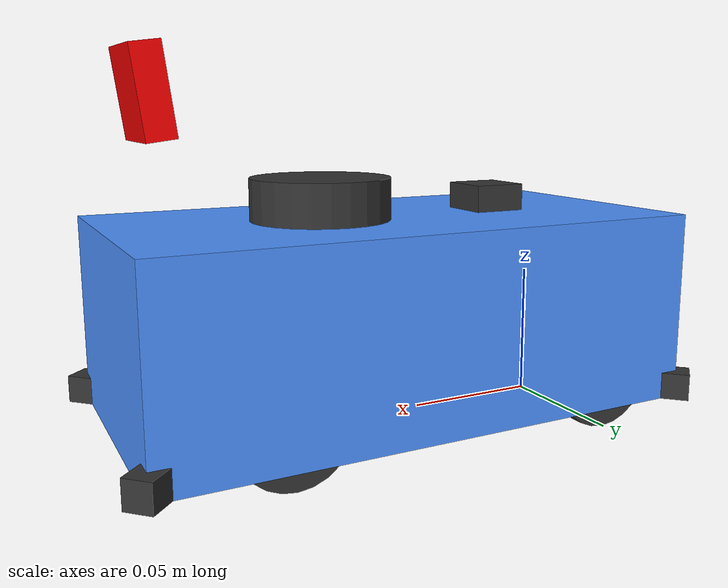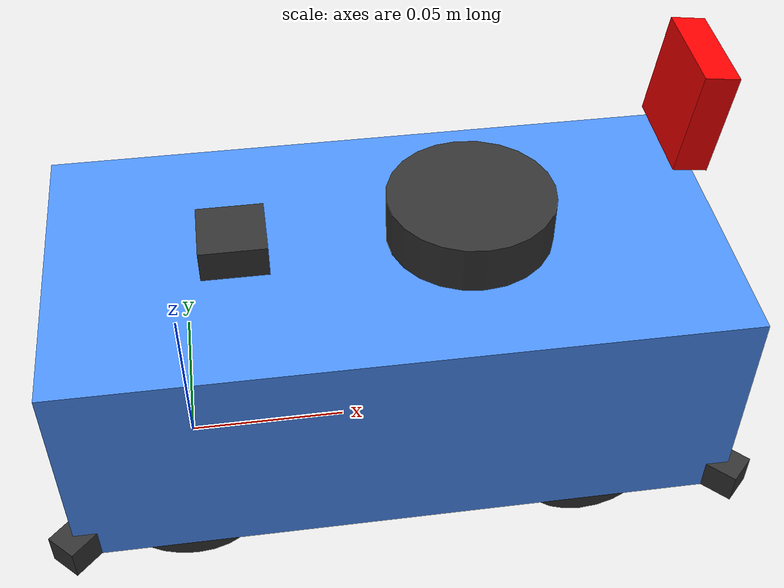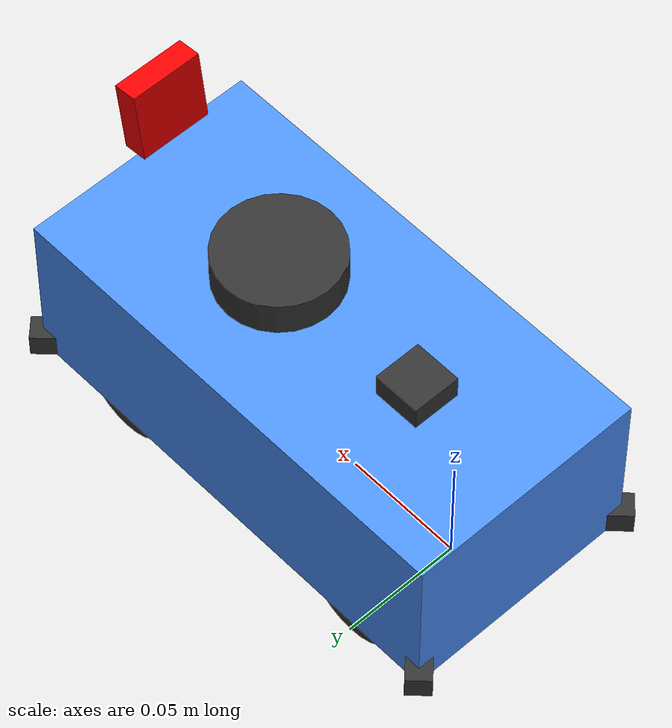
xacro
<?xml version="1.0"?>

<robot xmlns:xacro="http://www.ros.org/wiki/xacro" name="lazyBot">
    <xacro:property name="wheelbase" value="0.12" />
    <xacro:property name="len_offs" value="0.035" />
    <xacro:property name="length" value="0.2" />
    <xacro:property name="width" value="0.1" />
    <xacro:property name="hinge_d" value="0.035" />
    <xacro:property name="wheel_width" value="0.094" />
    <xacro:property name="height" value="0.07" />
    <xacro:property name="ground_offset" value="0.006" />
    <xacro:property name="wheel_radius" value="0.02" />
    <xacro:property name="wheel_length" value="0.005" />
    <xacro:property name="laser_distance_from_base" value="0.09" />
    <xacro:property name="laser_height" value="0.015" />
    <xacro:property name="laser_radius" value="0.025" />
    <xacro:property name="imu_distance_from_base" value="0.02" />
    <xacro:property name="imu_size" value="0.02" />
    <xacro:property name="proximity_size" value="0.01" />
    <xacro:property name="camera_distance" value="0.15" />
    <xacro:property name="camera_height" value="0.12" />
    <xacro:property name="car_name" value="lazyBot" />

    <xacro:property name="base_mass" value="1.5" />
    <xacro:property name="wheel_mass" value="0.05" />
    <xacro:property name="imu_mass" value="0.01" />
    <xacro:property name="laser_mass" value="0.05" />
    <xacro:property name="hinge_mass" value="0.01" />

    <xacro:include filename="lazyBotCore.xacro" />
    <xacro:include filename="lidar.xacro" />
    <xacro:include filename="proximity.xacro" />
    <xacro:include filename="camera.xacro" />
    <xacro:include filename="IMU.xacro" />
    <xacro:include filename="gazebo.xacro" />
    <xacro:include filename="control.xacro" />

</robot>

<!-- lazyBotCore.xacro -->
<robot xmlns:xacro="http://www.ros.org/wiki/xacro" name="lazyBot">
    <material name="black">
        <color rgba="0.2 0.2 0.2 1." />
    </material>

    <material name="red">
        <color rgba="1.0 0.0 0.0 1.0" />
    </material>

    <material name="blue">
        <color rgba="0.3 0.57 1. 1." />
    </material>

    <!-- Wheel macro -->
    <xacro:macro name="wheel_link" params="name radius length mass">
        <link name="${name}">
            <visual>
                <geometry>
                    <cylinder radius="${radius}" length="${length}" />
                </geometry>
                <material name="black" />
                <origin rpy="0 0 0" />
            </visual>
            <collision self_collide="false">
                <geometry>
                    <cylinder radius="${radius}" length="${length}" />
                </geometry>
                <origin rpy="0 0 0" />
                <surface>
                    <friction>
                        <ode>
                            <mu>1.0</mu>
                            <mu2>1.0</mu2>
                        </ode>
                    </friction>
                </surface>
            </collision>
            <inertial>
                <mass value="${mass}" />
                <inertia
                    ixx="${(mass/12)*(3*radius*radius + length*length)}"
                    iyy="${(mass/12)*(3*radius*radius + length*length)}"
                    izz="${(mass/2)*radius*radius}"
                    ixy="0" ixz="0" iyz="0" />
                <origin rpy="0 0 0" />
            </inertial>
        </link>
    </xacro:macro>

    <link name="base_link"> </link>

    <link name="chassis">
        <visual>
            <origin xyz="${length/2-len_offs} 0 ${ground_offset+height/2}" />
            <geometry>
                <box size="${length} ${width} ${height}" />
            </geometry>
            <material name="blue" />
        </visual>
        <collision self_collide="false">
            <origin xyz="${length/2-len_offs} 0 ${ground_offset+height/2}" />
            <geometry>
                <box size="${length} ${width} ${height}" />
            </geometry>
        </collision>
        <inertial>
            <origin xyz="${length/2-len_offs} 0 ${ground_offset+height/2}" />
            <mass value="${base_mass}" />
            <inertia ixx="${(base_mass/12)*(width*width + height*height)}"
                iyy="${(base_mass/12)*(length*length + height*height)}"
                izz="${(base_mass/12)*(length*length + width*width)}"
                ixy="0" ixz="0" iyz="0" />
        </inertial>
    </link>

    <joint name="chassis_joint" type="fixed">
        <parent link="base_link" />
        <child link="chassis" />
        <origin xyz="0 0 0" rpy="0 0 0" />
    </joint>

    <joint name="base_to_back_left_wheel" type="continuous">
        <parent link="chassis" />
        <child link="back_left_wheel" />
        <origin xyz="0 ${wheel_width/2} ${wheel_radius}" rpy="-${pi/2} 0 0" />
        <axis xyz="0 0 1" />
    </joint>

    <xacro:wheel_link name="back_left_wheel" radius="${wheel_radius}" length="${wheel_length}" mass="${wheel_mass}" />

    <joint name="base_to_back_right_wheel" type="continuous">
        <parent link="chassis" />
        <child link="back_right_wheel" />
        <origin xyz="0 ${-wheel_width/2} ${wheel_radius}" rpy="${pi/2} 0 0" />
        <axis xyz="0 0 -1" />
    </joint>

    <xacro:wheel_link name="back_right_wheel" radius="${wheel_radius}" length="${wheel_length}" mass="${wheel_mass}" />

    <joint name="base_to_front_left_hinge" type="revolute">
        <parent link="chassis" />
        <child link="front_left_hinge" />
        <origin xyz="${wheelbase} ${hinge_d} ${wheel_radius}" />
        <axis xyz="0 0 1" />
        <limit lower="${-pi/4}" upper="${pi/4}" effort="10" velocity="50" />
    </joint>

    <link name="front_left_hinge">
        <inertial>
            <mass value="${hinge_mass}" />
            <inertia ixx="${hinge_mass*0.01}" iyy="${hinge_mass*0.01}" izz="${hinge_mass*0.01}"
                ixy="0" ixz="0" iyz="0" />
        </inertial>
    </link>

    <joint name="front_left_hinge_to_wheel" type="continuous">
        <parent link="front_left_hinge" />
        <child link="front_left_wheel" />
        <origin xyz="0 ${wheel_width/2 - hinge_d} 0" rpy="${-pi/2} 0 0" />
        <axis xyz="0 0 1" />
    </joint>

    <xacro:wheel_link name="front_left_wheel" radius="${wheel_radius}" length="${wheel_length}" mass="${wheel_mass}" />

    <joint name="base_to_front_right_hinge" type="revolute">
        <parent link="chassis" />
        <child link="front_right_hinge" />
        <origin xyz="${wheelbase} ${-hinge_d} ${wheel_radius}" />
        <axis xyz="0 0 1" />
        <limit lower="${-pi/4}" upper="${pi/4}" effort="10" velocity="50" />
    </joint>

    <link name="front_right_hinge">
        <inertial>
            <mass value="${hinge_mass}" />
            <inertia ixx="${hinge_mass*0.01}" iyy="${hinge_mass*0.01}" izz="${hinge_mass*0.01}"
                ixy="0" ixz="0" iyz="0" />
        </inertial>
    </link>

    <joint name="front_right_hinge_to_wheel" type="continuous">
        <parent link="front_right_hinge" />
        <child link="front_right_wheel" />
        <origin xyz="0 ${-wheel_width/2 + hinge_d} 0" rpy="${pi/2} 0 0" />
        <axis xyz="0 0 -1" />
    </joint>

    <xacro:wheel_link name="front_right_wheel" radius="${wheel_radius}" length="${wheel_length}" mass="${wheel_mass}" />

</robot>

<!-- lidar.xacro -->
<robot xmlns:xacro="http://www.ros.org/wiki/xacro" name="lazyBot">
    <joint name="base_to_laser_model" type="fixed">
        <parent link="chassis" />
        <child link="laser" />
        <origin xyz="${laser_distance_from_base} 0 ${ground_offset+height+(laser_height/2)}" />
    </joint>

    <link name="laser">
        <visual>
            <geometry>
                <cylinder radius="${laser_radius}" length="${laser_height}" />
            </geometry>
            <material name="black" />
        </visual>
        <collision self_collide="false">
            <geometry>
                <cylinder radius="${laser_radius}" length="${laser_height}" />
            </geometry>
        </collision>
        <inertial>
            <mass value="${laser_mass}" />
            <inertia
                ixx="${(laser_mass/12)*(3*laser_radius*laser_radius + laser_height*laser_height)}"
                iyy="${(laser_mass/12)*(3*laser_radius*laser_radius + laser_height*laser_height)}"
                izz="${(laser_mass/2)*laser_radius*laser_radius}"
                ixy="0" ixz="0" iyz="0" />
        </inertial>
    </link>

    <gazebo reference="laser">
        <material>Gazebo/Red</material>

        <sensor name="laser" type="ray">
            <pose> 0 0 0 0 0 0 </pose>
            <visualize>false</visualize>
            <update_rate>10</update_rate>
            <ray>
                <scan>
                    <horizontal>
                        <samples>720</samples>
                        <min_angle>${-pi}</min_angle>
                        <max_angle>${pi}</max_angle>
                    </horizontal>
                </scan>
                <range>
                    <min>0.05</min>
                    <max>12</max>
                </range>
            </ray>
            <plugin name="laser_controller" filename="libgazebo_ros_ray_sensor.so">
                <ros>
                    <argument>~/out:=scan</argument>
                </ros>
                <output_type>sensor_msgs/LaserScan</output_type>
                <frame_name>laser</frame_name>
                <laserRetro>1.0</laserRetro>
                <min_intensity>0.2</min_intensity>
                <max_intensity>1.0</max_intensity>
            </plugin>
        </sensor>
    </gazebo>
</robot>

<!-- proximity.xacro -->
<robot xmlns:xacro="http://www.ros.org/wiki/xacro" name="lazyBot">
    <xacro:macro name="proximity" params="name position angle">
        <joint name="base_to_proximity_${name}" type="fixed">
            <parent link="chassis" />
            <child link="proximity_${name}" />
            <origin xyz="${position}" rpy="0 0 ${angle}" />
        </joint>

        <link name="proximity_${name}">
            <visual>
                <geometry>
                    <box size="${proximity_size} ${proximity_size} ${proximity_size}" />
                </geometry>
                <material name="black" />
            </visual>
        </link>

        <gazebo reference="proximity_${name}">
            <material>Gazebo/Yellow</material>

            <sensor name="proximity_${name}" type="ray">
                <pose> 0 0 0 0 0 0 </pose>
                <visualize>true</visualize>
                <update_rate>50</update_rate>
                <ray>
                    <scan>
                        <horizontal>
                            <samples>3</samples>
                            <min_angle>${-pi/4}</min_angle>
                            <max_angle>${pi/4}</max_angle>
                        </horizontal>
                    </scan>
                    <range>
                        <min>0.001</min>
                        <max>0.03</max>
                    </range>
                </ray>
                <plugin name="proxy_${name}" filename="libgazebo_ros_ray_sensor.so">
                    <ros>
                        <argument>~/out:=proximity_${name}</argument>
                    </ros>
                    <output_type>sensor_msgs/LaserScan</output_type>
                    <frame_name>proximity_${name}</frame_name>
                </plugin>
            </sensor>
        </gazebo>
    </xacro:macro>

    <xacro:proximity name="front_right" position="${length-len_offs} -${width/2} ${ground_offset + proximity_size/2}" angle="-${pi/4}" />
    <xacro:proximity name="front_left" position="${length-len_offs} ${width/2} ${ground_offset + proximity_size/2}" angle="${pi/4}" />
    <xacro:proximity name="rear_right" position="-${len_offs} -${width/2} ${ground_offset + proximity_size/2}" angle="${pi+pi/4}" />
    <xacro:proximity name="rear_left" position="-${len_offs} ${width/2} ${ground_offset + proximity_size/2}" angle="${pi-pi/4}" />
</robot>

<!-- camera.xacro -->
<robot xmlns:xacro="http://www.ros.org/wiki/xacro" >

    <joint name="chassis_to_cam_servo" type="revolute">
        <parent link="chassis" />
        <child link="cam_servo_link" />
        <origin xyz="${camera_distance} 0 ${camera_height}" />
        <axis xyz="0 0 1" />
        <limit lower="${-pi/2}" upper="${pi/2}" effort="10" velocity="50" />
    </joint>

    <link name="cam_servo_link">
        <inertial>
            <mass value="${hinge_mass}" />
            <inertia ixx="${hinge_mass*0.01}" iyy="${hinge_mass*0.01}" izz="${hinge_mass*0.01}"
                ixy="0" ixz="0" iyz="0" />
        </inertial>
    </link>

    <joint name="camera_joint" type="fixed">
        <parent link="cam_servo_link"/>
        <child link="camera_link"/>
        <origin xyz="0 0 0" rpy="0 ${pi/24} 0"/>
    </joint>

    <link name="camera_link">
        <visual>
            <geometry>
                <box size="0.010 0.03 0.03"/>
            </geometry>
            <material name="red"/>
        </visual>
    </link>

    <joint name="camera_optical_joint" type="fixed">
        <parent link="camera_link"/>
        <child link="camera_link_optical"/>
        <origin xyz="0 0 0" rpy="${-pi/2} 0 ${-pi/2}"/>
    </joint>

    <link name="camera_link_optical"></link>

    <gazebo reference="camera_link">
        <material>Gazebo/Red</material>

        <sensor name="camera" type="camera">
            <pose> 0 0 0 0 0 0 </pose>
            <visualize>true</visualize>
            <update_rate>60</update_rate>
            <camera>
                <horizontal_fov>${pi/3}</horizontal_fov>
                <image>
                    <format>R8G8B8</format>
                    <width>640</width>
                    <height>480</height>
                </image>
                <clip>
                    <near>0.01</near>
                    <far>3.0</far>
                </clip>
            </camera>
            <plugin name="camera_controller" filename="libgazebo_ros_camera.so">
                <frame_name>camera_link_optical</frame_name>
            </plugin>
        </sensor>
    </gazebo>

</robot>

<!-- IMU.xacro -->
<robot xmlns:xacro="http://www.ros.org/wiki/xacro" name="lazyBot">
    <joint name="base_to_imu" type="fixed">
        <parent link="chassis" />
        <child link="imu" />
        <origin xyz="${imu_distance_from_base} 0 ${ground_offset+height+(imu_size/4)}" />
    </joint>

    <link name="imu">
        <visual>
            <geometry>
                <box size="${imu_size} ${imu_size} ${imu_size/2}" />
            </geometry>
            <material name="black" />
        </visual>
    </link>

    <gazebo reference="imu">
        <material>Gazebo/Black</material>
        <sensor name="imu_sensor" type="imu">
            <always_on>1</always_on>
            <update_rate>50</update_rate>
            <visualize>true</visualize>
            <plugin filename="libgazebo_ros_imu_sensor.so" name="imu_plugin">
                <ros>
                    <namespace></namespace>
                    <remapping>~/out:=imu</remapping>
                </ros>
                <initial_orientation_as_reference>true</initial_orientation_as_reference>
            </plugin>
        </sensor>
    </gazebo>
</robot>
